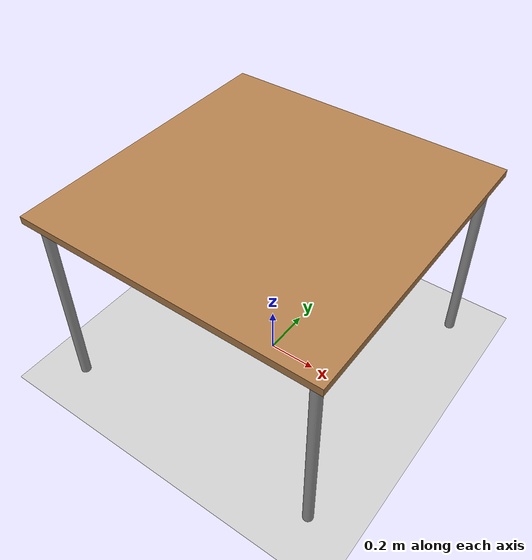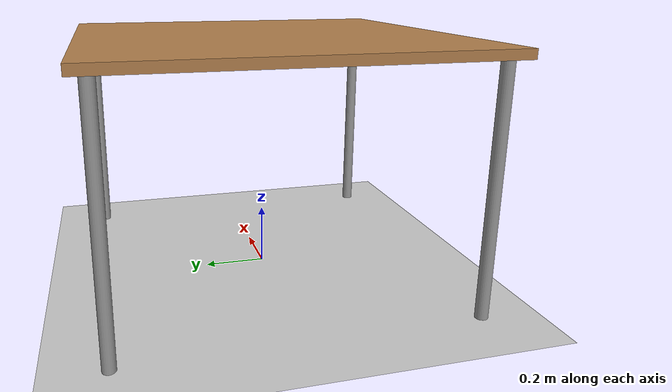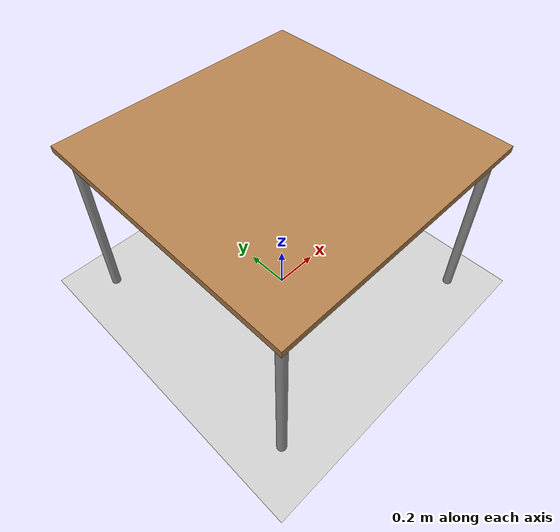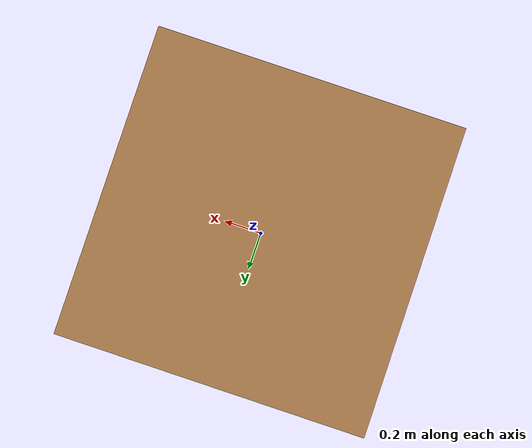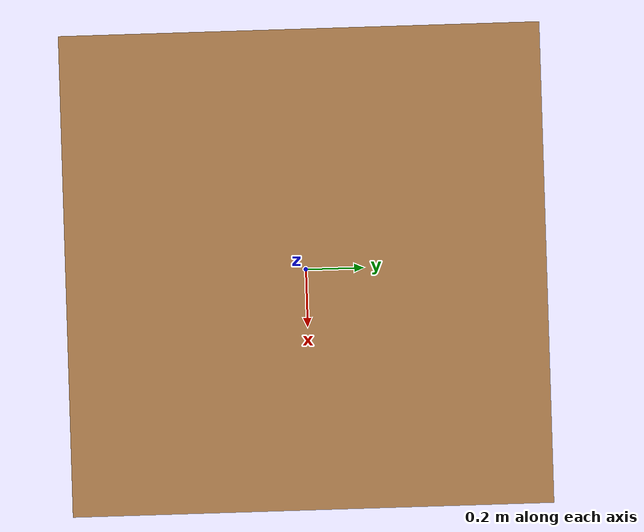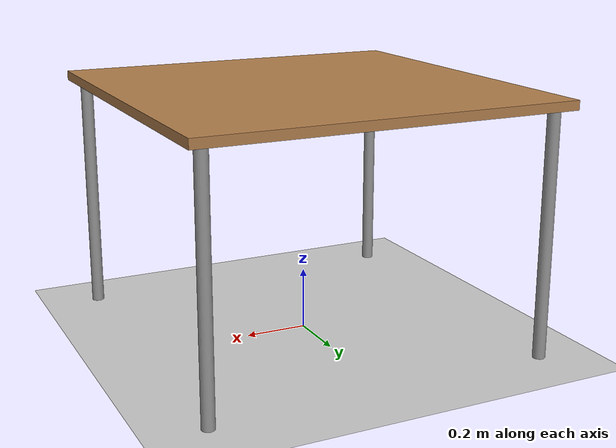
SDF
<sdf version='1.7'>
  <world name='default'>
    <!-- gazebo global world/physics parameters -->
    <gravity>0 0 -9.8</gravity>
    <magnetic_field>6e-06 2.3e-05 -4.2e-05</magnetic_field>
    <atmosphere type='adiabatic'/>
    <max_contacts>100</max_contacts>
    <physics type='ode'>
      <max_step_size>0.001</max_step_size>
      <real_time_factor>1</real_time_factor>
      <real_time_update_rate>1000</real_time_update_rate>
      <constraints>
        <cfm></cfm>
        <contact_max_correcting_vel>1</contact_max_correcting_vel>
        <contact_surface_layer>0.001</contact_surface_layer>
      </constraints>
    </physics>
    <scene>
      <ambient>0.4 0.4 0.4 1</ambient>
      <background>0.7 0.7 0.7 1</background>
      <shadows>1</shadows>
    </scene>
    <spherical_coordinates>
      <surface_model>EARTH_WGS84</surface_model>
      <latitude_deg>0</latitude_deg>
      <longitude_deg>0</longitude_deg>
      <elevation>0</elevation>
      <heading_deg>0</heading_deg>
    </spherical_coordinates>

    <!-- basic environments -->
    <include>
      <uri>model://ground_plane</uri>
    </include>
    <include>
      <uri>model://sun</uri>
    </include>
    <!-- add gazebo default table  -->
    <include>
      <uri>model://Table</uri>
      <name>table</name>
      <pose>0 0 0 0 0 0</pose>
      <static>1</static>
    </include>

    <!-- Add containers and objects HERE -->

  </world>
</sdf>

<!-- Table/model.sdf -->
<sdf version="1.5">
  <model name="Table">
    <static>true</static>
    <link name="link">
      <gravity>1</gravity>
      <inertial>
        <mass>10.0</mass>
      </inertial>
      <collision name="surface">
        <pose>0 0 0.8 0 0 0</pose>
        <geometry>
          <box>
            <size>1.2 1.2 0.03</size>
          </box>
        </geometry>
        <surface>
          <friction>
            <ode>
              <mu>0.8</mu>
              <mu2>0.6</mu2>
            </ode>
          </friction>
        </surface>
      </collision>
      <visual name="visual1">
        <pose>0 0 0.8 0 0 0</pose>
        <geometry>
          <box>
            <size>1.2 1.2 0.03</size>
          </box>
        </geometry>
        <material>
          <diffuse>1.0 1.0 1.0</diffuse>
          <script>
            <uri>file://media/materials/scripts/gazebo.material</uri>
            <name>Gazebo/Wood</name>
          </script>
          <!-- PBR for Ignition, material scripts for gazebo classic-->
          <pbr>
            <metal>
              <albedo_map>model://Table/Table_Diffuse.jpg</albedo_map>
            </metal>
          </pbr>
        </material>
      </visual>
      <collision name="front_left_leg">
        <pose>0.55 0.55 0.4 0 0 0</pose>
        <geometry>
          <cylinder>
            <radius>0.02</radius>
            <length>0.8</length>
          </cylinder>
        </geometry>
      </collision>
      <visual name="front_left_leg_visual">
        <pose>0.55 0.55 0.4 0 0 0</pose>
        <geometry>
          <cylinder>
            <radius>0.02</radius>
            <length>0.8</length>
          </cylinder>
        </geometry>
        <material>
          <diffuse>0.5 0.5 0.5</diffuse>
          <script>
            <uri>file://media/materials/scripts/gazebo.material</uri>
            <name>Gazebo/Grey</name>
          </script>
        </material>
      </visual>
      <collision name="front_right_leg">
        <pose>0.55 -0.55 0.4 0 0 0</pose>
        <geometry>
          <cylinder>
            <radius>0.02</radius>
            <length>0.8</length>
          </cylinder>
        </geometry>
      </collision>
      <visual name="front_right_leg_visual">
        <pose>0.55 -0.55 0.4 0 0 0</pose>
        <geometry>
          <cylinder>
            <radius>0.02</radius>
            <length>0.8</length>
          </cylinder>
        </geometry>
        <material>
          <diffuse>0.5 0.5 0.5</diffuse>
          <script>
            <uri>file://media/materials/scripts/gazebo.material</uri>
            <name>Gazebo/Grey</name>
          </script>
        </material>
      </visual>
      <collision name="back_right_leg">
        <pose>-0.55 -0.55 0.4 0 0 0</pose>
        <geometry>
          <cylinder>
            <radius>0.02</radius>
            <length>0.8</length>
          </cylinder>
        </geometry>
      </collision>
      <visual name="back_right_leg_visual">
        <pose>-0.55 -0.55 0.4 0 0 0</pose>
        <geometry>
          <cylinder>
            <radius>0.02</radius>
            <length>0.8</length>
          </cylinder>
        </geometry>
        <material>
          <diffuse>0.5 0.5 0.5</diffuse>
          <script>
            <uri>file://media/materials/scripts/gazebo.material</uri>
            <name>Gazebo/Grey</name>
          </script>
        </material>
      </visual>
      <collision name="back_left_leg">
        <pose>-0.55 0.55 0.4 0 0 0</pose>
        <geometry>
          <cylinder>
            <radius>0.02</radius>
            <length>0.8</length>
          </cylinder>
        </geometry>
      </collision>
      <visual name="back_left_leg_visual">
        <pose>-0.55 0.55 0.4 0 0 0</pose>
        <geometry>
          <cylinder>
            <radius>0.02</radius>
            <length>0.8</length>
          </cylinder>
        </geometry>
        <material>
          <diffuse>0.5 0.5 0.5</diffuse>
          <script>
            <uri>file://media/materials/scripts/gazebo.material</uri>
            <name>Gazebo/Grey</name>
          </script>
        </material>
      </visual>
    </link>
  </model>
</sdf>
